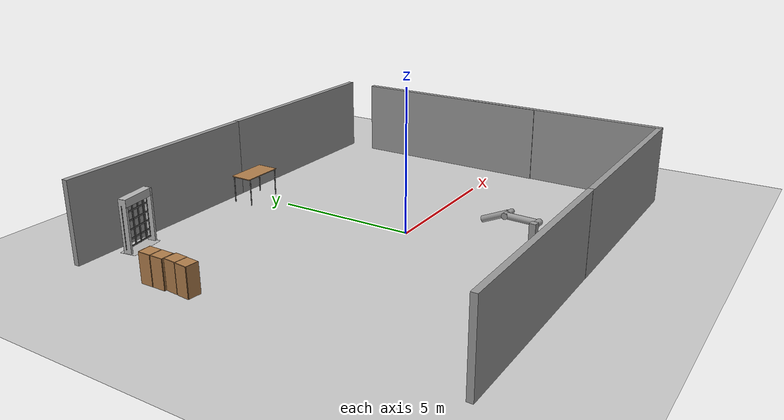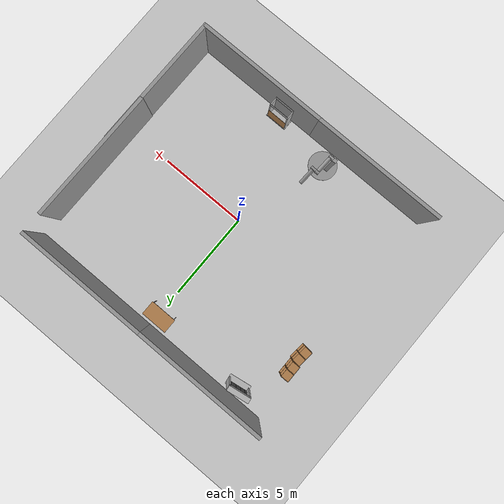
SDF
<sdf version="1.6">
 <world name="default">
  <model name="ground_plane">
   <static>1</static>
   <link name="link">
    <collision name="collision">
     <geometry><plane><normal>0 0 1</normal><size>100 100</size></plane></geometry>
     <surface><friction><ode><mu>100</mu><mu2>50</mu2></ode></friction></surface>
    </collision>
    <visual name="visual">
     <cast_shadows>0</cast_shadows>
     <geometry><plane><normal>0 0 1</normal><size>100 100</size></plane></geometry>
     <material>
      <script><uri>file://media/materials/scripts/gazebo.material</uri><name>Gazebo/Grey</name></script>
     </material>
    </visual>
   </link>
  </model>
  <model name="table">
   <static>1</static>
   <link name="link">
    <collision name="surface">
     <pose>0 0 1 0 -0 0</pose>
     <geometry><box><size>1.5 0.8 0.03</size></box></geometry>
     <surface><friction><ode><mu>0.6</mu><mu2>0.6</mu2></ode></friction></surface>
    </collision>
    <visual name="visual1">
     <pose>0 0 1 0 -0 0</pose>
     <geometry><box><size>1.5 0.8 0.03</size></box></geometry>
     <material>
      <script><uri>file://media/materials/scripts/gazebo.material</uri><name>Gazebo/Wood</name></script>
     </material>
    </visual>
    <collision name="front_left_leg">
     <pose>0.68 0.38 0.5 0 -0 0</pose>
     <geometry><cylinder><radius>0.02</radius><length>1</length></cylinder></geometry>
    </collision>
    <visual name="front_left_leg">
     <pose>0.68 0.38 0.5 0 -0 0</pose>
     <geometry><cylinder><radius>0.02</radius><length>1</length></cylinder></geometry>
     <material>
      <script><uri>file://media/materials/scripts/gazebo.material</uri><name>Gazebo/Grey</name></script>
     </material>
    </visual>
    <collision name="front_right_leg">
     <pose>0.68 -0.38 0.5 0 -0 0</pose>
     <geometry><cylinder><radius>0.02</radius><length>1</length></cylinder></geometry>
    </collision>
    <visual name="front_right_leg">
     <pose>0.68 -0.38 0.5 0 -0 0</pose>
     <geometry><cylinder><radius>0.02</radius><length>1</length></cylinder></geometry>
     <material>
      <script><uri>file://media/materials/scripts/gazebo.material</uri><name>Gazebo/Grey</name></script>
     </material>
    </visual>
    <collision name="back_right_leg">
     <pose>-0.68 -0.38 0.5 0 -0 0</pose>
     <geometry><cylinder><radius>0.02</radius><length>1</length></cylinder></geometry>
    </collision>
    <visual name="back_right_leg">
     <pose>-0.68 -0.38 0.5 0 -0 0</pose>
     <geometry><cylinder><radius>0.02</radius><length>1</length></cylinder></geometry>
     <material>
      <script><uri>file://media/materials/scripts/gazebo.material</uri><name>Gazebo/Grey</name></script>
     </material>
    </visual>
    <collision name="back_left_leg">
     <pose>-0.68 0.38 0.5 0 -0 0</pose>
     <geometry><cylinder><radius>0.02</radius><length>1</length></cylinder></geometry>
    </collision>
    <visual name="back_left_leg">
     <pose>-0.68 0.38 0.5 0 -0 0</pose>
     <geometry><cylinder><radius>0.02</radius><length>1</length></cylinder></geometry>
     <material>
      <script><uri>file://media/materials/scripts/gazebo.material</uri><name>Gazebo/Grey</name></script>
     </material>
    </visual>
   </link>
   <pose>-0.108598 6.44893 0 0 -0 0</pose>
  </model>
  <model name="grey_wall">
   <static>1</static>
   <link name="link">
    <pose>0 0 1.4 0 -0 0</pose>
    <collision name="collision"><geometry><box><size>7.5 0.2 2.8</size></box></geometry></collision>
    <visual name="visual">
     <cast_shadows>0</cast_shadows>
     <geometry><box><size>7.5 0.2 2.8</size></box></geometry>
     <material>
      <script>
       <uri>model://grey_wall/materials/scripts</uri>
       <uri>model://grey_wall/materials/textures</uri>
       <name>vrc/grey_wall</name>
      </script>
     </material>
    </visual>
   </link>
   <pose>-3.70916 7.30526 0 0 -0 0</pose>
  </model>
  <model name="grey_wall_clone">
   <static>1</static>
   <link name="link">
    <pose>0 0 1.4 0 -0 0</pose>
    <collision name="collision"><geometry><box><size>7.5 0.2 2.8</size></box></geometry></collision>
    <visual name="visual">
     <cast_shadows>0</cast_shadows>
     <geometry><box><size>7.5 0.2 2.8</size></box></geometry>
     <material>
      <script>
       <uri>model://grey_wall/materials/scripts</uri>
       <uri>model://grey_wall/materials/textures</uri>
       <name>vrc/grey_wall</name>
      </script>
     </material>
    </visual>
   </link>
   <pose>3.72276 7.30577 0 0 -0 0</pose>
  </model>
  <model name="grey_wall_clone_1">
   <static>1</static>
   <link name="link">
    <pose>0 0 1.4 0 -0 0</pose>
    <collision name="collision"><geometry><box><size>7.5 0.2 2.8</size></box></geometry></collision>
    <visual name="visual">
     <cast_shadows>0</cast_shadows>
     <geometry><box><size>7.5 0.2 2.8</size></box></geometry>
     <material>
      <script>
       <uri>model://grey_wall/materials/scripts</uri>
       <uri>model://grey_wall/materials/textures</uri>
       <name>vrc/grey_wall</name>
      </script>
     </material>
    </visual>
   </link>
   <pose>-3.69963 -6.15513 0 0 -0 0</pose>
  </model>
  <model name="grey_wall_clone_clone">
   <static>1</static>
   <link name="link">
    <pose>0 0 1.4 0 -0 0</pose>
    <collision name="collision"><geometry><box><size>7.5 0.2 2.8</size></box></geometry></collision>
    <visual name="visual">
     <cast_shadows>0</cast_shadows>
     <geometry><box><size>7.5 0.2 2.8</size></box></geometry>
     <material>
      <script>
       <uri>model://grey_wall/materials/scripts</uri>
       <uri>model://grey_wall/materials/textures</uri>
       <name>vrc/grey_wall</name>
      </script>
     </material>
    </visual>
   </link>
   <pose>3.65879 -6.15994 0 0 -0 0</pose>
  </model>
  <model name="grey_wall_clone_0_clone_clone">
   <static>1</static>
   <link name="link">
    <pose>0 0 1.4 0 -0 0</pose>
    <collision name="collision"><geometry><box><size>7.5 0.2 2.8</size></box></geometry></collision>
    <visual name="visual">
     <cast_shadows>0</cast_shadows>
     <geometry><box><size>7.5 0.2 2.8</size></box></geometry>
     <material>
      <script>
       <uri>model://grey_wall/materials/scripts</uri>
       <uri>model://grey_wall/materials/textures</uri>
       <name>vrc/grey_wall</name>
      </script>
     </material>
    </visual>
   </link>
   <pose>7.39341 -2.49757 0 0 0 -1.57526</pose>
  </model>
  <model name="grey_wall_clone_0_clone_clone_clone">
   <static>1</static>
   <link name="link">
    <pose>0 0 1.4 0 -0 0</pose>
    <collision name="collision"><geometry><box><size>7.5 0.2 2.8</size></box></geometry></collision>
    <visual name="visual">
     <cast_shadows>0</cast_shadows>
     <geometry><box><size>7.5 0.2 2.8</size></box></geometry>
     <material>
      <script>
       <uri>model://grey_wall/materials/scripts</uri>
       <uri>model://grey_wall/materials/textures</uri>
       <name>vrc/grey_wall</name>
      </script>
     </material>
    </visual>
   </link>
   <pose>7.38705 2.36769 0 0 0 -1.57526</pose>
  </model>
  <model name="double_pendulum_with_base">
   <link name="base">
    <inertial>
     <mass>100</mass>
     <inertia><ixx>1</ixx><ixy>0</ixy><ixz>0</ixz><iyy>1</iyy><iyz>0</iyz><izz>1</izz></inertia>
    </inertial>
    <visual name="vis_plate_on_ground">
     <pose>0 0 0.01 0 -0 0</pose>
     <geometry><cylinder><radius>0.8</radius><length>0.02</length></cylinder></geometry>
     <material>
      <script><uri>file://media/materials/scripts/gazebo.material</uri><name>Gazebo/Grey</name></script>
     </material>
    </visual>
    <visual name="vis_pole">
     <pose>-0.275 0 1.1 0 -0 0</pose>
     <geometry><box><size>0.2 0.2 2.2</size></box></geometry>
     <material>
      <script><uri>file://media/materials/scripts/gazebo.material</uri><name>Gazebo/Grey</name></script>
     </material>
    </visual>
    <collision name="col_plate_on_ground">
     <pose>0 0 0.01 0 -0 0</pose>
     <geometry><cylinder><radius>0.8</radius><length>0.02</length></cylinder></geometry>
    </collision>
    <collision name="col_pole">
     <pose>-0.275 0 1.1 0 -0 0</pose>
     <geometry><box><size>0.2 0.2 2.2</size></box></geometry>
    </collision>
   </link>
   <link name="upper_link">
    <pose>0 0 2.1 -1.5708 0 0</pose>
    <inertial>
     <pose>0 0 0.5 0 -0 0</pose>
     <inertia><ixx>1</ixx><ixy>0</ixy><ixz>0</ixz><iyy>1</iyy><iyz>0</iyz><izz>1</izz></inertia>
     <mass>1</mass>
    </inertial>
    <visual name="vis_upper_joint">
     <pose>-0.05 0 0 3.14159 1.57079 3.14159</pose>
     <geometry><cylinder><radius>0.1</radius><length>0.3</length></cylinder></geometry>
     <material>
      <script><uri>file://media/materials/scripts/gazebo.material</uri><name>Gazebo/Grey</name></script>
     </material>
    </visual>
    <visual name="vis_lower_joint">
     <pose>0 0 1 3.14159 1.57079 3.14159</pose>
     <geometry><cylinder><radius>0.1</radius><length>0.2</length></cylinder></geometry>
     <material>
      <script><uri>file://media/materials/scripts/gazebo.material</uri><name>Gazebo/Grey</name></script>
     </material>
    </visual>
    <visual name="vis_cylinder">
     <pose>0 0 0.5 0 -0 0</pose>
     <geometry><cylinder><radius>0.1</radius><length>0.9</length></cylinder></geometry>
     <material>
      <script><uri>file://media/materials/scripts/gazebo.material</uri><name>Gazebo/Grey</name></script>
     </material>
    </visual>
    <collision name="col_upper_joint">
     <pose>-0.05 0 0 3.14159 1.57079 3.14159</pose>
     <geometry><cylinder><radius>0.1</radius><length>0.3</length></cylinder></geometry>
    </collision>
    <collision name="col_lower_joint">
     <pose>0 0 1 3.14159 1.57079 3.14159</pose>
     <geometry><cylinder><radius>0.1</radius><length>0.2</length></cylinder></geometry>
    </collision>
    <collision name="col_cylinder">
     <pose>0 0 0.5 0 -0 0</pose>
     <geometry><cylinder><radius>0.1</radius><length>0.9</length></cylinder></geometry>
    </collision>
   </link>
   <link name="lower_link">
    <pose>0.25 1 2.1 -2 0 0</pose>
    <inertial>
     <pose>0 0 0.5 0 -0 0</pose>
     <inertia><ixx>1</ixx><ixy>0</ixy><ixz>0</ixz><iyy>1</iyy><iyz>0</iyz><izz>1</izz></inertia>
     <mass>1</mass>
    </inertial>
    <visual name="vis_lower_joint">
     <pose>0 0 0 3.14159 1.57079 3.14159</pose>
     <geometry><cylinder><radius>0.08</radius><length>0.3</length></cylinder></geometry>
     <material>
      <script><uri>file://media/materials/scripts/gazebo.material</uri><name>Gazebo/Grey</name></script>
     </material>
    </visual>
    <visual name="vis_cylinder">
     <pose>0 0 0.5 0 -0 0</pose>
     <geometry><cylinder><radius>0.1</radius><length>0.9</length></cylinder></geometry>
     <material>
      <script><uri>file://media/materials/scripts/gazebo.material</uri><name>Gazebo/Grey</name></script>
     </material>
    </visual>
    <collision name="col_lower_joint">
     <pose>0 0 0 3.14159 1.57079 3.14159</pose>
     <geometry><cylinder><radius>0.08</radius><length>0.3</length></cylinder></geometry>
    </collision>
    <collision name="col_cylinder">
     <pose>0 0 0.5 0 -0 0</pose>
     <geometry><cylinder><radius>0.1</radius><length>0.9</length></cylinder></geometry>
    </collision>
   </link>
   <joint name="upper_joint" type="revolute">
    <parent>base</parent>
    <child>upper_link</child>
    <axis>
     <xyz>1 0 0</xyz>
     <use_parent_model_frame>0</use_parent_model_frame>
     <limit><lower>-1e+16</lower><upper>1e+16</upper></limit>
     <dynamics><spring_reference>0</spring_reference><spring_stiffness>0</spring_stiffness></dynamics>
    </axis>
   </joint>
   <joint name="lower_joint" type="revolute">
    <parent>upper_link</parent>
    <child>lower_link</child>
    <axis>
     <xyz>1 0 0</xyz>
     <use_parent_model_frame>0</use_parent_model_frame>
     <limit><lower>-1e+16</lower><upper>1e+16</upper></limit>
     <dynamics><spring_reference>0</spring_reference><spring_stiffness>0</spring_stiffness></dynamics>
    </axis>
   </joint>
   <pose>-1.56046 -5.23158 0 0 0 -0.040894</pose>
  </model>
  <model name="cabinet">
   <static>1</static>
   <link name="cabinet_bottom_plate">
    <inertial>
     <pose>0 0 -1 0 -0 0</pose>
     <inertia><ixx>2.05</ixx><ixy>0</ixy><ixz>0</ixz><iyy>2.05</iyy><iyz>0</iyz><izz>2.05</izz></inertia>
     <mass>25</mass>
    </inertial>
    <collision name="cabinet_bottom_plate_geom">
     <pose>0 0 0.01 0 -0 0</pose>
     <geometry><box><size>0.45 0.45 0.02</size></box></geometry>
    </collision>
    <visual name="cabinet_bottom_plate_geom_visual">
     <pose>0 0 0.01 0 -0 0</pose>
     <geometry><box><size>0.45 0.45 0.02</size></box></geometry>
     <material>
      <script><uri>file://media/materials/scripts/gazebo.material</uri><name>Gazebo/Wood</name></script>
     </material>
    </visual>
    <collision name="cabinet_bottom_plate_geom_cabinet_back_plate">
     <pose>0.235 0 0.51 0 -0 0</pose>
     <geometry><box><size>0.02 0.45 1.02</size></box></geometry>
    </collision>
    <visual name="cabinet_bottom_plate_geom_cabinet_back_plate_visual">
     <pose>0.235 0 0.51 0 -0 0</pose>
     <geometry><box><size>0.02 0.45 1.02</size></box></geometry>
     <material>
      <script><uri>file://media/materials/scripts/gazebo.material</uri><name>Gazebo/Wood</name></script>
     </material>
    </visual>
    <collision name="cabinet_bottom_plate_geom_cabinet_left_plate">
     <pose>0 0.235 0.51 0 -0 0</pose>
     <geometry><box><size>0.45 0.02 1.02</size></box></geometry>
    </collision>
    <visual name="cabinet_bottom_plate_geom_cabinet_left_plate_visual">
     <pose>0 0.235 0.51 0 -0 0</pose>
     <geometry><box><size>0.45 0.02 1.02</size></box></geometry>
     <material>
      <script><uri>file://media/materials/scripts/gazebo.material</uri><name>Gazebo/Wood</name></script>
     </material>
    </visual>
    <collision name="cabinet_bottom_plate_geom_cabinet_middle_plate">
     <pose>0 0 0.51 0 -0 0</pose>
     <geometry><box><size>0.45 0.45 0.02</size></box></geometry>
    </collision>
    <visual name="cabinet_bottom_plate_geom_cabinet_middle_plate_visual">
     <pose>0 0 0.51 0 -0 0</pose>
     <geometry><box><size>0.45 0.45 0.02</size></box></geometry>
     <material>
      <script><uri>file://media/materials/scripts/gazebo.material</uri><name>Gazebo/Wood</name></script>
     </material>
    </visual>
    <collision name="cabinet_bottom_plate_geom_cabinet_right_plate">
     <pose>0 -0.235 0.51 0 -0 0</pose>
     <geometry><box><size>0.45 0.02 1.02</size></box></geometry>
    </collision>
    <visual name="cabinet_bottom_plate_geom_cabinet_right_plate_visual">
     <pose>0 -0.235 0.51 0 -0 0</pose>
     <geometry><box><size>0.45 0.02 1.02</size></box></geometry>
     <material>
      <script><uri>file://media/materials/scripts/gazebo.material</uri><name>Gazebo/Wood</name></script>
     </material>
    </visual>
    <collision name="cabinet_bottom_plate_geom_cabinet_top_plate">
     <pose>0 0 1.01 0 -0 0</pose>
     <geometry><box><size>0.45 0.45 0.02</size></box></geometry>
    </collision>
    <visual name="cabinet_bottom_plate_geom_cabinet_top_plate_visual">
     <pose>0 0 1.01 0 -0 0</pose>
     <geometry><box><size>0.45 0.45 0.02</size></box></geometry>
     <material>
      <script><uri>file://media/materials/scripts/gazebo.material</uri><name>Gazebo/Wood</name></script>
     </material>
    </visual>
   </link>
   <pose>-6.98713 3.01217 0 0 -0 3.05484</pose>
  </model>
  <model name="cabinet_clone">
   <static>1</static>
   <link name="cabinet_bottom_plate">
    <inertial>
     <pose>0 0 -1 0 -0 0</pose>
     <inertia><ixx>2.05</ixx><ixy>0</ixy><ixz>0</ixz><iyy>2.05</iyy><iyz>0</iyz><izz>2.05</izz></inertia>
     <mass>25</mass>
    </inertial>
    <collision name="cabinet_bottom_plate_geom">
     <pose>0 0 0.01 0 -0 0</pose>
     <geometry><box><size>0.45 0.45 0.02</size></box></geometry>
    </collision>
    <visual name="cabinet_bottom_plate_geom_visual">
     <pose>0 0 0.01 0 -0 0</pose>
     <geometry><box><size>0.45 0.45 0.02</size></box></geometry>
     <material>
      <script><uri>file://media/materials/scripts/gazebo.material</uri><name>Gazebo/Wood</name></script>
     </material>
    </visual>
    <collision name="cabinet_bottom_plate_geom_cabinet_back_plate">
     <pose>0.235 0 0.51 0 -0 0</pose>
     <geometry><box><size>0.02 0.45 1.02</size></box></geometry>
    </collision>
    <visual name="cabinet_bottom_plate_geom_cabinet_back_plate_visual">
     <pose>0.235 0 0.51 0 -0 0</pose>
     <geometry><box><size>0.02 0.45 1.02</size></box></geometry>
     <material>
      <script><uri>file://media/materials/scripts/gazebo.material</uri><name>Gazebo/Wood</name></script>
     </material>
    </visual>
    <collision name="cabinet_bottom_plate_geom_cabinet_left_plate">
     <pose>0 0.235 0.51 0 -0 0</pose>
     <geometry><box><size>0.45 0.02 1.02</size></box></geometry>
    </collision>
    <visual name="cabinet_bottom_plate_geom_cabinet_left_plate_visual">
     <pose>0 0.235 0.51 0 -0 0</pose>
     <geometry><box><size>0.45 0.02 1.02</size></box></geometry>
     <material>
      <script><uri>file://media/materials/scripts/gazebo.material</uri><name>Gazebo/Wood</name></script>
     </material>
    </visual>
    <collision name="cabinet_bottom_plate_geom_cabinet_middle_plate">
     <pose>0 0 0.51 0 -0 0</pose>
     <geometry><box><size>0.45 0.45 0.02</size></box></geometry>
    </collision>
    <visual name="cabinet_bottom_plate_geom_cabinet_middle_plate_visual">
     <pose>0 0 0.51 0 -0 0</pose>
     <geometry><box><size>0.45 0.45 0.02</size></box></geometry>
     <material>
      <script><uri>file://media/materials/scripts/gazebo.material</uri><name>Gazebo/Wood</name></script>
     </material>
    </visual>
    <collision name="cabinet_bottom_plate_geom_cabinet_right_plate">
     <pose>0 -0.235 0.51 0 -0 0</pose>
     <geometry><box><size>0.45 0.02 1.02</size></box></geometry>
    </collision>
    <visual name="cabinet_bottom_plate_geom_cabinet_right_plate_visual">
     <pose>0 -0.235 0.51 0 -0 0</pose>
     <geometry><box><size>0.45 0.02 1.02</size></box></geometry>
     <material>
      <script><uri>file://media/materials/scripts/gazebo.material</uri><name>Gazebo/Wood</name></script>
     </material>
    </visual>
    <collision name="cabinet_bottom_plate_geom_cabinet_top_plate">
     <pose>0 0 1.01 0 -0 0</pose>
     <geometry><box><size>0.45 0.45 0.02</size></box></geometry>
    </collision>
    <visual name="cabinet_bottom_plate_geom_cabinet_top_plate_visual">
     <pose>0 0 1.01 0 -0 0</pose>
     <geometry><box><size>0.45 0.45 0.02</size></box></geometry>
     <material>
      <script><uri>file://media/materials/scripts/gazebo.material</uri><name>Gazebo/Wood</name></script>
     </material>
    </visual>
   </link>
   <pose>-6.93913 3.48981 0 0 -0 3.05484</pose>
  </model>
  <model name="cabinet_clone_clone">
   <static>1</static>
   <link name="cabinet_bottom_plate">
    <inertial>
     <pose>0 0 -1 0 -0 0</pose>
     <inertia><ixx>2.05</ixx><ixy>0</ixy><ixz>0</ixz><iyy>2.05</iyy><iyz>0</iyz><izz>2.05</izz></inertia>
     <mass>25</mass>
    </inertial>
    <collision name="cabinet_bottom_plate_geom">
     <pose>0 0 0.01 0 -0 0</pose>
     <geometry><box><size>0.45 0.45 0.02</size></box></geometry>
    </collision>
    <visual name="cabinet_bottom_plate_geom_visual">
     <pose>0 0 0.01 0 -0 0</pose>
     <geometry><box><size>0.45 0.45 0.02</size></box></geometry>
     <material>
      <script><uri>file://media/materials/scripts/gazebo.material</uri><name>Gazebo/Wood</name></script>
     </material>
    </visual>
    <collision name="cabinet_bottom_plate_geom_cabinet_back_plate">
     <pose>0.235 0 0.51 0 -0 0</pose>
     <geometry><box><size>0.02 0.45 1.02</size></box></geometry>
    </collision>
    <visual name="cabinet_bottom_plate_geom_cabinet_back_plate_visual">
     <pose>0.235 0 0.51 0 -0 0</pose>
     <geometry><box><size>0.02 0.45 1.02</size></box></geometry>
     <material>
      <script><uri>file://media/materials/scripts/gazebo.material</uri><name>Gazebo/Wood</name></script>
     </material>
    </visual>
    <collision name="cabinet_bottom_plate_geom_cabinet_left_plate">
     <pose>0 0.235 0.51 0 -0 0</pose>
     <geometry><box><size>0.45 0.02 1.02</size></box></geometry>
    </collision>
    <visual name="cabinet_bottom_plate_geom_cabinet_left_plate_visual">
     <pose>0 0.235 0.51 0 -0 0</pose>
     <geometry><box><size>0.45 0.02 1.02</size></box></geometry>
     <material>
      <script><uri>file://media/materials/scripts/gazebo.material</uri><name>Gazebo/Wood</name></script>
     </material>
    </visual>
    <collision name="cabinet_bottom_plate_geom_cabinet_middle_plate">
     <pose>0 0 0.51 0 -0 0</pose>
     <geometry><box><size>0.45 0.45 0.02</size></box></geometry>
    </collision>
    <visual name="cabinet_bottom_plate_geom_cabinet_middle_plate_visual">
     <pose>0 0 0.51 0 -0 0</pose>
     <geometry><box><size>0.45 0.45 0.02</size></box></geometry>
     <material>
      <script><uri>file://media/materials/scripts/gazebo.material</uri><name>Gazebo/Wood</name></script>
     </material>
    </visual>
    <collision name="cabinet_bottom_plate_geom_cabinet_right_plate">
     <pose>0 -0.235 0.51 0 -0 0</pose>
     <geometry><box><size>0.45 0.02 1.02</size></box></geometry>
    </collision>
    <visual name="cabinet_bottom_plate_geom_cabinet_right_plate_visual">
     <pose>0 -0.235 0.51 0 -0 0</pose>
     <geometry><box><size>0.45 0.02 1.02</size></box></geometry>
     <material>
      <script><uri>file://media/materials/scripts/gazebo.material</uri><name>Gazebo/Wood</name></script>
     </material>
    </visual>
    <collision name="cabinet_bottom_plate_geom_cabinet_top_plate">
     <pose>0 0 1.01 0 -0 0</pose>
     <geometry><box><size>0.45 0.45 0.02</size></box></geometry>
    </collision>
    <visual name="cabinet_bottom_plate_geom_cabinet_top_plate_visual">
     <pose>0 0 1.01 0 -0 0</pose>
     <geometry><box><size>0.45 0.45 0.02</size></box></geometry>
     <material>
      <script><uri>file://media/materials/scripts/gazebo.material</uri><name>Gazebo/Wood</name></script>
     </material>
    </visual>
   </link>
   <pose>-6.98713 3.98712 0 0 0 -3.14086</pose>
  </model>
  <model name="cabinet_clone_clone_clone">
   <static>1</static>
   <link name="cabinet_bottom_plate">
    <inertial>
     <pose>0 0 -1 0 -0 0</pose>
     <inertia><ixx>2.05</ixx><ixy>0</ixy><ixz>0</ixz><iyy>2.05</iyy><iyz>0</iyz><izz>2.05</izz></inertia>
     <mass>25</mass>
    </inertial>
    <collision name="cabinet_bottom_plate_geom">
     <pose>0 0 0.01 0 -0 0</pose>
     <geometry><box><size>0.45 0.45 0.02</size></box></geometry>
    </collision>
    <visual name="cabinet_bottom_plate_geom_visual">
     <pose>0 0 0.01 0 -0 0</pose>
     <geometry><box><size>0.45 0.45 0.02</size></box></geometry>
     <material>
      <script><uri>file://media/materials/scripts/gazebo.material</uri><name>Gazebo/Wood</name></script>
     </material>
    </visual>
    <collision name="cabinet_bottom_plate_geom_cabinet_back_plate">
     <pose>0.235 0 0.51 0 -0 0</pose>
     <geometry><box><size>0.02 0.45 1.02</size></box></geometry>
    </collision>
    <visual name="cabinet_bottom_plate_geom_cabinet_back_plate_visual">
     <pose>0.235 0 0.51 0 -0 0</pose>
     <geometry><box><size>0.02 0.45 1.02</size></box></geometry>
     <material>
      <script><uri>file://media/materials/scripts/gazebo.material</uri><name>Gazebo/Wood</name></script>
     </material>
    </visual>
    <collision name="cabinet_bottom_plate_geom_cabinet_left_plate">
     <pose>0 0.235 0.51 0 -0 0</pose>
     <geometry><box><size>0.45 0.02 1.02</size></box></geometry>
    </collision>
    <visual name="cabinet_bottom_plate_geom_cabinet_left_plate_visual">
     <pose>0 0.235 0.51 0 -0 0</pose>
     <geometry><box><size>0.45 0.02 1.02</size></box></geometry>
     <material>
      <script><uri>file://media/materials/scripts/gazebo.material</uri><name>Gazebo/Wood</name></script>
     </material>
    </visual>
    <collision name="cabinet_bottom_plate_geom_cabinet_middle_plate">
     <pose>0 0 0.51 0 -0 0</pose>
     <geometry><box><size>0.45 0.45 0.02</size></box></geometry>
    </collision>
    <visual name="cabinet_bottom_plate_geom_cabinet_middle_plate_visual">
     <pose>0 0 0.51 0 -0 0</pose>
     <geometry><box><size>0.45 0.45 0.02</size></box></geometry>
     <material>
      <script><uri>file://media/materials/scripts/gazebo.material</uri><name>Gazebo/Wood</name></script>
     </material>
    </visual>
    <collision name="cabinet_bottom_plate_geom_cabinet_right_plate">
     <pose>0 -0.235 0.51 0 -0 0</pose>
     <geometry><box><size>0.45 0.02 1.02</size></box></geometry>
    </collision>
    <visual name="cabinet_bottom_plate_geom_cabinet_right_plate_visual">
     <pose>0 -0.235 0.51 0 -0 0</pose>
     <geometry><box><size>0.45 0.02 1.02</size></box></geometry>
     <material>
      <script><uri>file://media/materials/scripts/gazebo.material</uri><name>Gazebo/Wood</name></script>
     </material>
    </visual>
    <collision name="cabinet_bottom_plate_geom_cabinet_top_plate">
     <pose>0 0 1.01 0 -0 0</pose>
     <geometry><box><size>0.45 0.45 0.02</size></box></geometry>
    </collision>
    <visual name="cabinet_bottom_plate_geom_cabinet_top_plate_visual">
     <pose>0 0 1.01 0 -0 0</pose>
     <geometry><box><size>0.45 0.45 0.02</size></box></geometry>
     <material>
      <script><uri>file://media/materials/scripts/gazebo.material</uri><name>Gazebo/Wood</name></script>
     </material>
    </visual>
   </link>
   <pose>-6.98897 4.47218 0 0 0 -3.14086</pose>
  </model>
  <model name="frc2016_portcullis">
   <link name="base">
    <inertial>
     <mass>50</mass>
     <pose>0 0 1.02941 0 -0 0</pose>
     <inertia><ixx>3.81711</ixx><ixy>0</ixy><ixz>0</ixz><iyy>4.87698</iyy><iyz>0</iyz><izz>1.6283</izz></inertia>
    </inertial>
    <visual name="platform">
     <pose>0 0 0.07284 0 -0 0</pose>
     <geometry><box><size>1.27 0.5842 0.003175</size></box></geometry>
    </visual>
    <collision name="platform">
     <pose>0 0 0.07284 0 -0 0</pose>
     <geometry><box><size>1.27 0.5842 0.003175</size></box></geometry>
    </collision>
    <visual name="left_column">
     <pose>0.59284 0 0.99042 0 -0 0</pose>
     <geometry><box><size>0.08375 0.28575 1.83198</size></box></geometry>
    </visual>
    <collision name="left_column">
     <pose>0.59284 0 0.99042 0 -0 0</pose>
     <geometry><box><size>0.08375 0.28575 1.83198</size></box></geometry>
    </collision>
    <visual name="right_column">
     <pose>-0.57759 0 0.99042 0 -0 0</pose>
     <geometry><box><size>0.08375 0.28575 1.83198</size></box></geometry>
    </visual>
    <collision name="right_column">
     <pose>-0.57759 0 0.99042 0 -0 0</pose>
     <geometry><box><size>0.08375 0.28575 1.83198</size></box></geometry>
    </collision>
    <visual name="top">
     <pose>-0.00034 0 1.77722 0 -0 0</pose>
     <geometry><box><size>1.22962 0.28575 0.26657</size></box></geometry>
    </visual>
    <collision name="top">
     <pose>-0.00034 0 1.77722 0 -0 0</pose>
     <geometry><box><size>1.22962 0.28575 0.26657</size></box></geometry>
    </collision>
    <visual name="castor1">
     <pose>-0.45651 -0.16234 0.03272 0 -0 0</pose>
     <geometry><sphere><radius>0.03272</radius></sphere></geometry>
    </visual>
    <collision name="castor1">
     <pose>-0.45651 -0.16234 0.03272 0 -0 0</pose>
     <geometry><sphere><radius>0.03272</radius></sphere></geometry>
    </collision>
    <visual name="castor2">
     <pose>-0.27883 0.21836 0.03272 0 -0 0</pose>
     <geometry><sphere><radius>0.03272</radius></sphere></geometry>
    </visual>
    <collision name="castor2">
     <pose>-0.27883 0.21836 0.03272 0 -0 0</pose>
     <geometry><sphere><radius>0.03272</radius></sphere></geometry>
    </collision>
    <visual name="castor3">
     <pose>0.28083 0.21906 0.03272 0 -0 0</pose>
     <geometry><sphere><radius>0.03272</radius></sphere></geometry>
    </visual>
    <collision name="castor3">
     <pose>0.28083 0.21906 0.03272 0 -0 0</pose>
     <geometry><sphere><radius>0.03272</radius></sphere></geometry>
    </collision>
    <visual name="castor4">
     <pose>0.45871 -0.16186 0.03272 0 -0 0</pose>
     <geometry><sphere><radius>0.03272</radius></sphere></geometry>
    </visual>
    <collision name="castor4">
     <pose>0.45871 -0.16186 0.03272 0 -0 0</pose>
     <geometry><sphere><radius>0.03272</radius></sphere></geometry>
    </collision>
   </link>
   <link name="gate">
    <pose>-0.0287 0.02885 0.93327 0 -0 0</pose>
    <inertial>
     <mass>2</mass>
     <inertia><ixx>3.81711</ixx><ixy>0</ixy><ixz>0</ixz><iyy>4.87698</iyy><iyz>0</iyz><izz>1.6283</izz></inertia>
    </inertial>
    <collision name="collision"><geometry><box><size>1.1938 0.02496 1.45732</size></box></geometry></collision>
    <visual name="horz_1">
     <pose>0 0 -0.70326 0 -0 0</pose>
     <geometry><box><size>1.1938 0.02496 0.0508</size></box></geometry>
     <material><ambient>0.4 0.4 0.4 1</ambient><diffuse>0.4 0.4 0.4 1</diffuse></material>
    </visual>
    <visual name="horz_2">
     <pose>0 0 -0.44926 0 -0 0</pose>
     <geometry><box><size>1.1938 0.02496 0.0508</size></box></geometry>
     <material><ambient>0.4 0.4 0.4 1</ambient><diffuse>0.4 0.4 0.4 1</diffuse></material>
    </visual>
    <visual name="horz_3">
     <pose>0 0 -0.14517 0 -0 0</pose>
     <geometry><box><size>1.1938 0.02496 0.0508</size></box></geometry>
     <material><ambient>0.4 0.4 0.4 1</ambient><diffuse>0.4 0.4 0.4 1</diffuse></material>
    </visual>
    <visual name="horz_4">
     <pose>0 0 0.16034 0 -0 0</pose>
     <geometry><box><size>1.1938 0.02496 0.0508</size></box></geometry>
     <material><ambient>0.4 0.4 0.4 1</ambient><diffuse>0.4 0.4 0.4 1</diffuse></material>
    </visual>
    <visual name="horz_5">
     <pose>0 0 0.46514 0 -0 0</pose>
     <geometry><box><size>1.1938 0.02496 0.0508</size></box></geometry>
     <material><ambient>0.4 0.4 0.4 1</ambient><diffuse>0.4 0.4 0.4 1</diffuse></material>
    </visual>
    <visual name="horz_6">
     <pose>0 0 0.72994 0 -0 0</pose>
     <geometry><box><size>1.1938 0.02496 0.0508</size></box></geometry>
     <material><ambient>0.4 0.4 0.4 1</ambient><diffuse>0.4 0.4 0.4 1</diffuse></material>
    </visual>
    <visual name="vert_1">
     <pose>-0.58448 0 0 0 -0 0</pose>
     <geometry><box><size>0.02495 0.02496 1.45732</size></box></geometry>
     <material><ambient>0.4 0.4 0.4 1</ambient><diffuse>0.4 0.4 0.4 1</diffuse></material>
    </visual>
    <visual name="vert_2">
     <pose>-0.38128 0 0 0 -0 0</pose>
     <geometry><box><size>0.0508 0.02496 1.45732</size></box></geometry>
     <material><ambient>0.4 0.4 0.4 1</ambient><diffuse>0.4 0.4 0.4 1</diffuse></material>
    </visual>
    <visual name="vert_3">
     <pose>-0.12728 0 0 0 -0 0</pose>
     <geometry><box><size>0.0508 0.02496 1.45732</size></box></geometry>
     <material><ambient>0.4 0.4 0.4 1</ambient><diffuse>0.4 0.4 0.4 1</diffuse></material>
    </visual>
    <visual name="vert_4">
     <pose>0.12672 0 0 0 -0 0</pose>
     <geometry><box><size>0.0508 0.02496 1.45732</size></box></geometry>
     <material><ambient>0.4 0.4 0.4 1</ambient><diffuse>0.4 0.4 0.4 1</diffuse></material>
    </visual>
    <visual name="vert_5">
     <pose>0.38072 0 0 0 -0 0</pose>
     <geometry><box><size>0.0508 0.02496 1.45732</size></box></geometry>
     <material><ambient>0.4 0.4 0.4 1</ambient><diffuse>0.4 0.4 0.4 1</diffuse></material>
    </visual>
    <visual name="vert_6">
     <pose>0.58392 0 0 0 -0 0</pose>
     <geometry><box><size>0.02495 0.02496 1.45732</size></box></geometry>
     <material><ambient>0.4 0.4 0.4 1</ambient><diffuse>0.4 0.4 0.4 1</diffuse></material>
    </visual>
   </link>
   <joint name="joint" type="prismatic">
    <parent>base</parent>
    <child>gate</child>
    <axis>
     <xyz>0 0 1</xyz>
     <limit><lower>0</lower><upper>1</upper></limit>
     <use_parent_model_frame>0</use_parent_model_frame>
     <dynamics><spring_reference>0</spring_reference><spring_stiffness>0</spring_stiffness></dynamics>
    </axis>
   </joint>
   <pose>-5.54377 6.59302 -0 -1e-06 -2e-06 0.155668</pose>
  </model>
  <model name="frc2016_drawbridge">
   <link name="base">
    <inertial>
     <mass>10</mass>
     <pose>0 0 1 0 -0 0</pose>
     <inertia><ixx>3.64907</ixx><ixy>0</ixy><ixz>0</ixz><iyy>4.67075</iyy><iyz>0</iyz><izz>1.66649</izz></inertia>
    </inertial>
    <visual name="platform">
     <pose>0 0 0.0425 0 -0 0</pose>
     <geometry><box><size>1.27 0.5969 0.085</size></box></geometry>
    </visual>
    <collision name="platform">
     <pose>0 0 0.0425 0 -0 0</pose>
     <geometry><box><size>1.27 0.5969 0.085</size></box></geometry>
    </collision>
    <visual name="right_wall">
     <pose>0.55879 0.04444 0.889 0 -0 0</pose>
     <geometry><box><size>0.05715 0.45698 1.77165</size></box></geometry>
    </visual>
    <collision name="right_wall">
     <pose>0.55879 0.04444 0.889 0 -0 0</pose>
     <geometry><box><size>0.05715 0.45698 1.77165</size></box></geometry>
    </collision>
    <visual name="left_wall">
     <pose>-0.55879 0.04444 0.889 0 -0 0</pose>
     <geometry><box><size>0.05715 0.45698 1.77165</size></box></geometry>
    </visual>
    <collision name="left_wall">
     <pose>-0.55879 0.04444 0.889 0 -0 0</pose>
     <geometry><box><size>0.05715 0.45698 1.77165</size></box></geometry>
    </collision>
    <visual name="front_upper_wall">
     <pose>0 0.27611 1.84286 0 -0 0</pose>
     <geometry><box><size>1.1557 0.006347 0.254</size></box></geometry>
    </visual>
    <collision name="front_upper_wall">
     <pose>0 0.27611 1.84286 0 -0 0</pose>
     <geometry><box><size>1.1557 0.006347 0.254</size></box></geometry>
    </collision>
    <visual name="back_upper_wall">
     <pose>0 -0.18722 1.84286 0 -0 0</pose>
     <geometry><box><size>1.1557 0.006347 0.254</size></box></geometry>
    </visual>
    <collision name="back_upper_wall">
     <pose>0 -0.18722 1.84286 0 -0 0</pose>
     <geometry><box><size>1.1557 0.006347 0.254</size></box></geometry>
    </collision>
   </link>
   <link name="bridge">
    <pose>0 0.28245 0.50577 0 -0 0</pose>
    <inertial>
     <mass>2</mass>
     <pose>0 -0.28245 -0.50577 0 -0 0</pose>
     <inertia>
      <ixx>0.139361</ixx>
      <ixy>0</ixy>
      <ixz>0</ixz>
      <iyy>0.357088</iyy>
      <iyz>0</iyz>
      <izz>0.217741</izz>
     </inertia>
    </inertial>
    <visual name="visual">
     <geometry><box><size>1.14298 0.006347 0.9144</size></box></geometry>
     <material><script><name>Gazebo/WoodFloor</name><uri>__default__</uri></script></material>
    </visual>
    <collision name="collision"><geometry><box><size>1.14298 0.006347 0.9144</size></box></geometry></collision>
   </link>
   <joint name="bridge_joint" type="revolute">
    <pose>0 0 -0.4172 0 -0 0</pose>
    <parent>base</parent>
    <child>bridge</child>
    <axis>
     <xyz>1 0 0</xyz>
     <limit><lower>-2</lower><upper>0</upper></limit>
     <use_parent_model_frame>0</use_parent_model_frame>
     <dynamics><spring_reference>0</spring_reference><spring_stiffness>0</spring_stiffness></dynamics>
    </axis>
   </joint>
   <pose>1.93054 -5.71953 -3e-06 2e-06 4e-06 -0.004062</pose>
  </model>
 </world>
</sdf>
